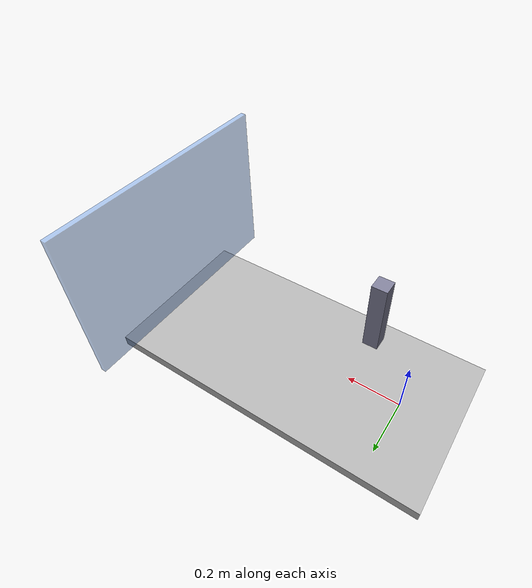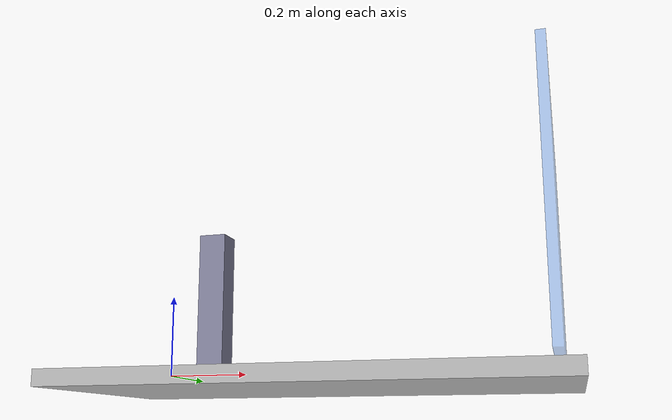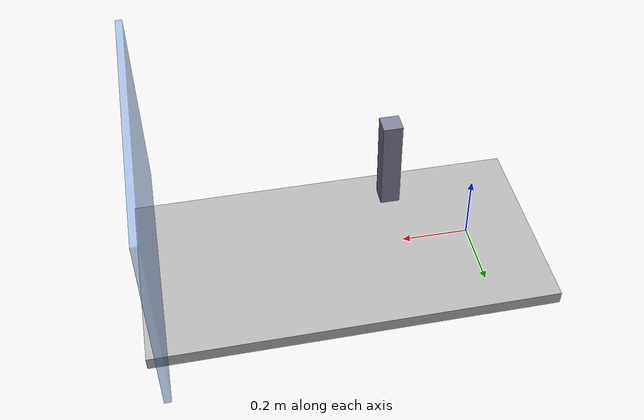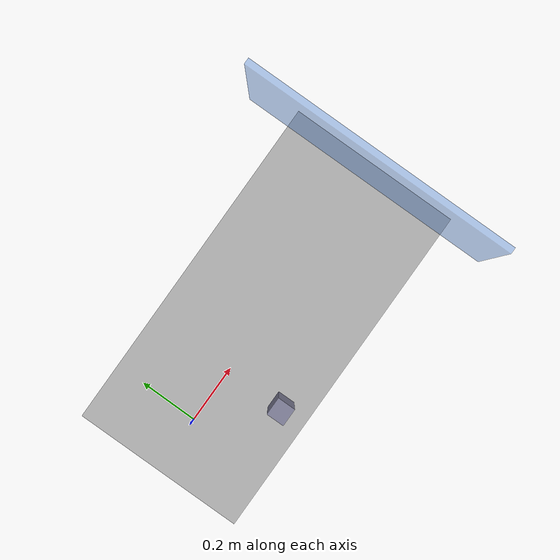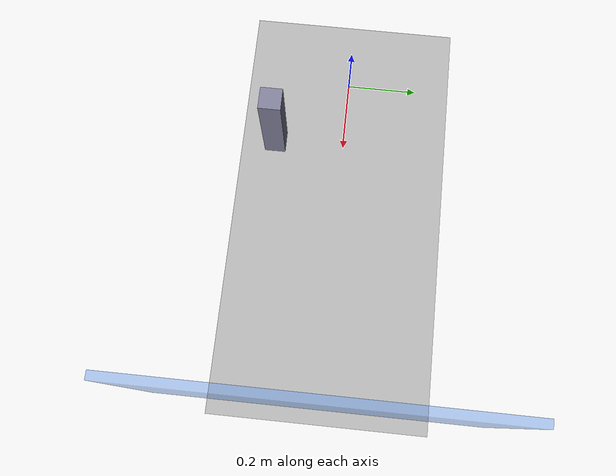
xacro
<?xml version="1.0"?>
<robot xmlns:xacro="http://www.ros.org/wiki/xacro" name="gr_scene">

  <xacro:arg name="countertop_size" default="1.20 0.60 0.04"/>
  <xacro:arg name="countertop_xyz"  default="0.40 0.00 -0.02"/>
  <xacro:arg name="faucet_size"     default="0.06 0.06 0.30"/>
  <xacro:arg name="faucet_xyz"      default="0.20 -0.20 0.15"/>
  <xacro:arg name="mirror_size"     default="0.02 0.90 0.60"/>
  <xacro:arg name="mirror_xyz"      default="0.95 0.00 0.30"/>

  <xacro:macro name="box_obstacle" params="name size xyz rgba">
    <link name="${name}">
      <visual>
        <geometry><box size="${size}"/></geometry>
        <material name="${name}_mat"><color rgba="${rgba}"/></material>
      </visual>
      <collision>
        <geometry><box size="${size}"/></geometry>
      </collision>
    </link>
    <joint name="${name}_to_world" type="fixed">
      <parent link="world"/>
      <child link="${name}"/>
      <origin xyz="${xyz}" rpy="0 0 0"/>
    </joint>
  </xacro:macro>

  <link name="world"/>
  <xacro:box_obstacle name="countertop" size="$(arg countertop_size)" xyz="$(arg countertop_xyz)" rgba="0.7 0.7 0.7 1.0"/>
  <xacro:box_obstacle name="faucet"     size="$(arg faucet_size)"     xyz="$(arg faucet_xyz)"     rgba="0.5 0.5 0.6 1.0"/>
  <xacro:box_obstacle name="mirror"     size="$(arg mirror_size)"     xyz="$(arg mirror_xyz)"     rgba="0.4 0.6 0.9 0.5"/>

</robot>
